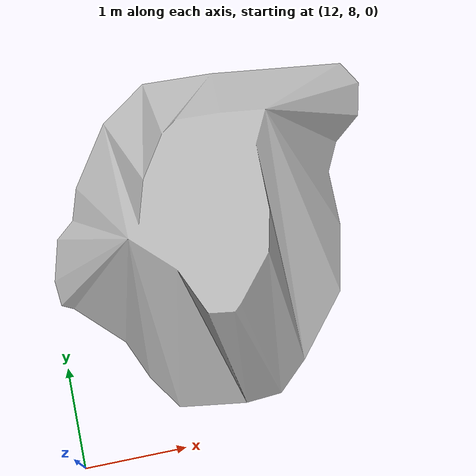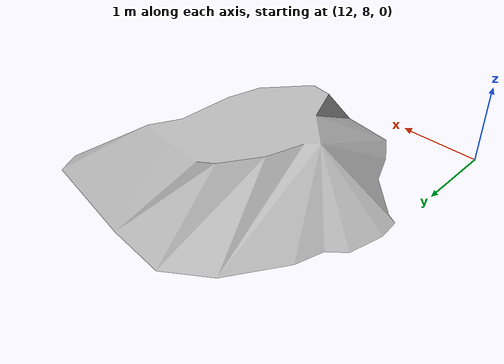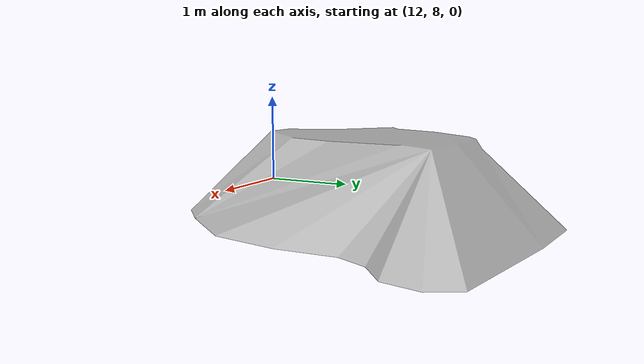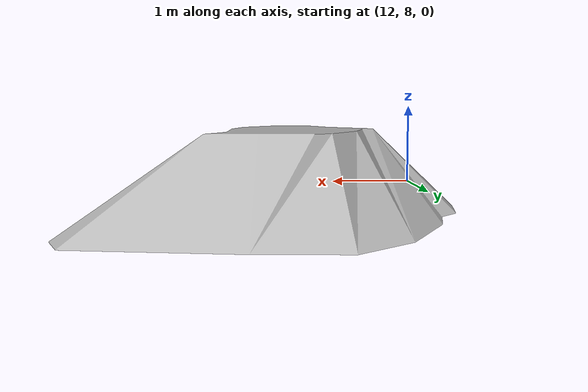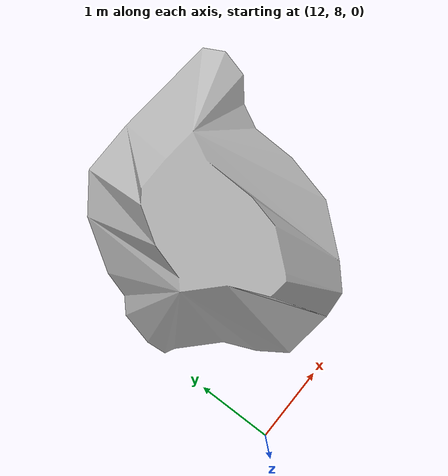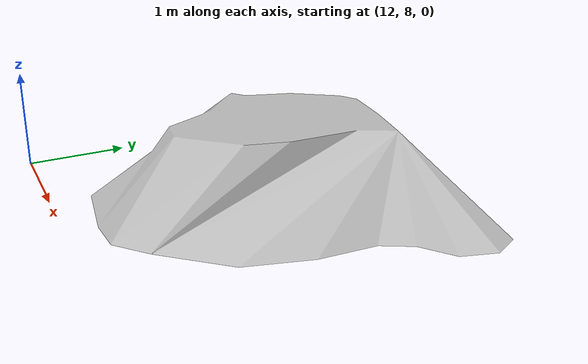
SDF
<?xml version="1.0" ?>
<sdf version="1.5">
  <model name="rock_3">
    <static>true</static>
    <link name="rock_3_link">
      <collision name="collision">
        <geometry>
          <mesh>
          <scale>5.0 5.0 5.0</scale>
            <uri>model://rock_3/meshes/model.dae</uri>
          </mesh>
        </geometry>
      </collision>
      <visual name="visual">
        <geometry>
          <mesh>
          <scale>5.0 5.0 5.0</scale>
            <uri>model://rock_3/meshes/model.dae</uri>
          </mesh>
        </geometry>
      </visual>
    </link>
  </model>
</sdf>
